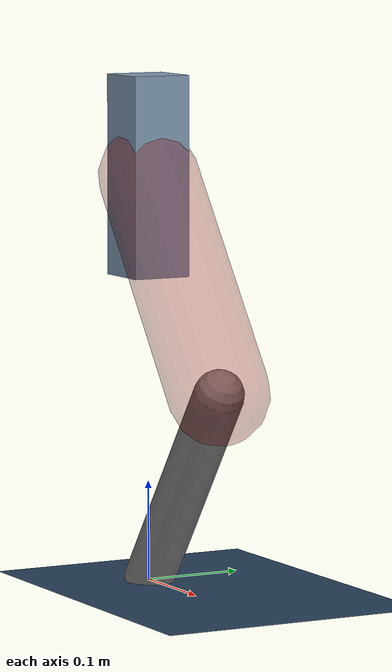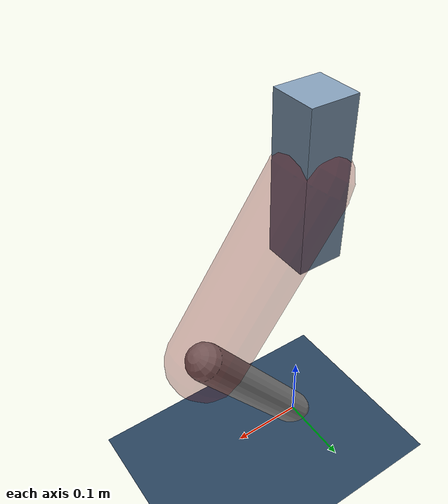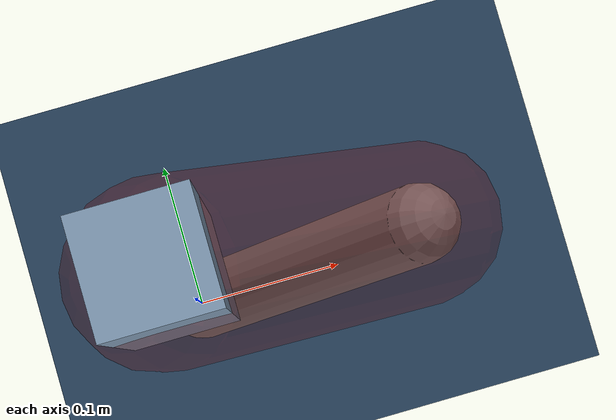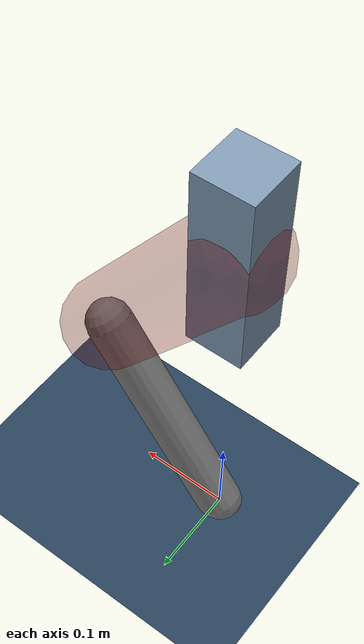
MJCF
<mujoco model="Hopper2D">
	<compiler inertiafromgeom="true" angle="radian" />
	<option timestep="0.001" integrator="implicit" cone="elliptic" solver="Newton" tolerance="1e-10" />

	<default>
		<geom contype="1" conaffinity="1" condim="3" friction="2 0.005 0.0001" solref="0.005 1" />
		<joint limited="true" damping="0.1" />
	</default>

	<asset>
		<texture name="skybox" type="skybox" builtin="gradient" rgb1=".4 .6 .8" rgb2="0 0 0" width="800" height="800" />
		<texture name="grid" type="2d" builtin="checker" rgb1=".1 .2 .3" rgb2=".2 .3 .4" width="300" height="300" mark="edge" markrgb=".2 .3 .4" />
		<material name="ground" texture="grid" texrepeat="1 1" texuniform="true" reflectance="0.1" />
		<material name="leg" rgba="0.5 0.6 0.7 1" />
	</asset>

	<worldbody>

		<geom name="floor" type="plane" size="5 5 0.25" material="ground" />

		<light directional="false" diffuse="0.8 0.8 0.8" specular="0.3 0.3 0.3" pos="0 0 2" dir="0 0 -1" />
		<light mode="targetbodycom" target="base" directional="false" diffuse="0.8 0.8 0.8" specular="0.3 0.3 0.3" pos="0 0 2" dir="0 0 -1" />

		<camera name="fixed" pos="0 -2 1" xyaxes="1 0 0 0 0 1" />
		<camera name="tracking" mode="trackcom" pos="0 -3 1" />

		<body name="root" pos="0 0 0.40721164899998635">
			<joint name="slide_x" type="slide" axis="1 0 0" range="-100 100" />
			<joint name="slide_z" type="slide" axis="0 0 1" range="0 10" />

			<body name="base" pos="0 0 0">
				<geom name="torso" type="box" size="0.03 0.03 0.1" mass="2.588" material="leg" />

				<body name="link1" pos="0 0 0" euler="0 0.9378165876214956 0">
					<joint type="hinge" axis="0 -1 0" pos="0 0 0" name="hinge1" limited="true" range="-3.14 3.14" stiffness="0" damping="0.1" />
					<geom name="thigh" type="capsule" fromto="0 0 0 0.2501700216809024 0 0" size="0.05" rgba="0.5 0 0 0.3" mass="0.8568420563703463" />

					<body name="link2" pos="0.2501700216809024 0 0" euler="0 1.2570754325514975 0">
						<joint type="hinge" axis="0 -1 0" pos="0 0 0" name="hinge2" limited="true" range="-3.14 3.14" stiffness="0" damping="0.1" />
						<geom name="shank" type="capsule" fromto="0 0 0 0.25324647183996113 0 0" size="0.025" mass="0.4451971774719689" />

					</body>
				</body>
			</body>
		</body>
	</worldbody>

	<actuator>
		<motor name="torque1" joint="hinge1" ctrlrange="-58.62140011128858 58.62140011128858" ctrllimited="true" gear="1" />
		<motor name="torque2" joint="hinge2" ctrlrange="-56.1396021137264 56.1396021137264" ctrllimited="true" gear="1" />
	</actuator>
</mujoco>
